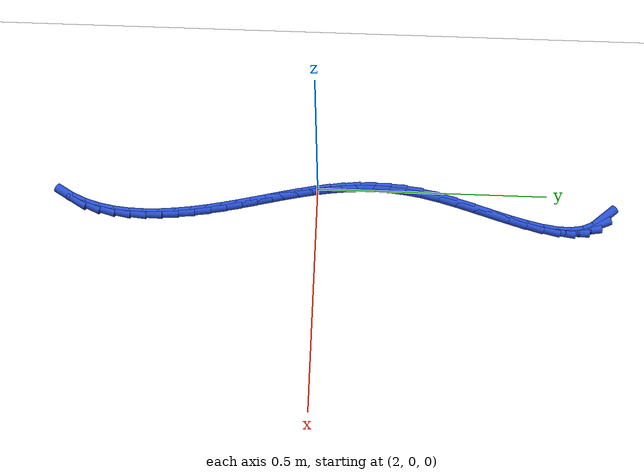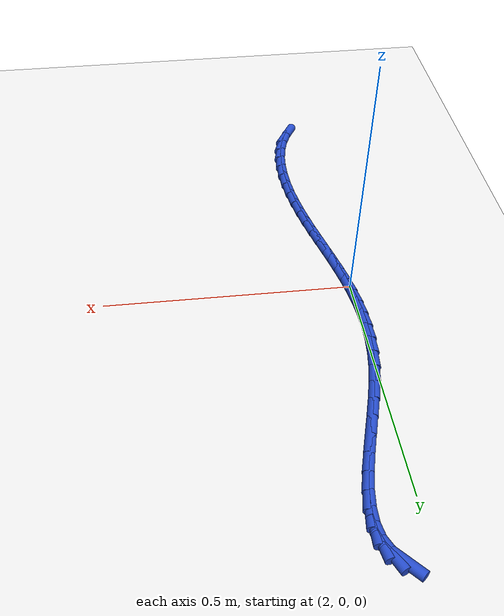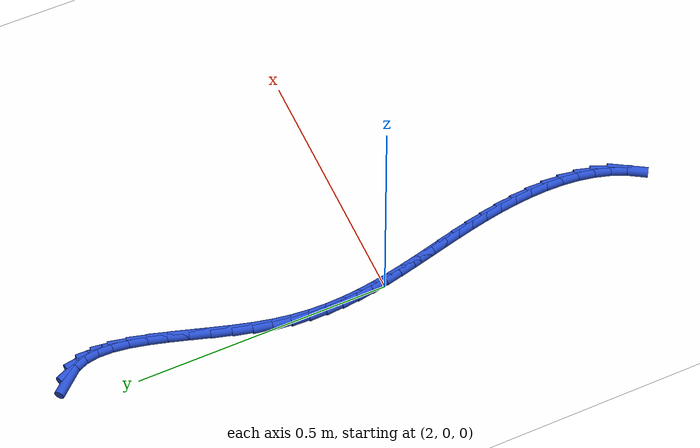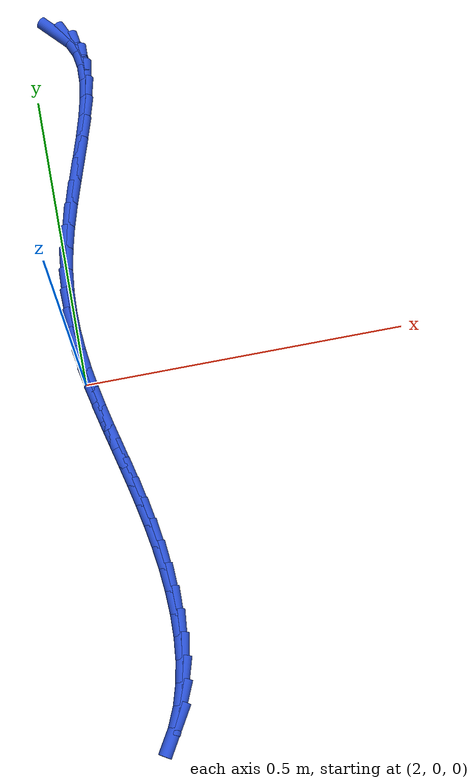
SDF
<sdf version="1.6">
 <world name="default">
  <model name="ground_plane">
   <static>1</static>
   <link name="link">
    <collision name="collision">
     <geometry><plane><normal>0 0 1</normal><size>100 100</size></plane></geometry>
     <surface><friction><ode><mu>100</mu><mu2>50</mu2></ode></friction></surface>
    </collision>
    <visual name="visual">
     <cast_shadows>0</cast_shadows>
     <geometry><plane><normal>0 0 1</normal><size>100 100</size></plane></geometry>
     <material>
      <script><uri>file://media/materials/scripts/gazebo.material</uri><name>Gazebo/WhiteGlow</name></script>
     </material>
    </visual>
   </link>
  </model>
  <model name="line">
   <link name="link_87">
    <pose>2.053789627583341 0.6159602797670356 0.01 0 1.57 -0.847214775837806</pose>
    <collision name="collision">
     <geometry><cylinder><radius>0.01</radius><length>0.08</length></cylinder></geometry>
    </collision>
    <visual name="visual">
     <material>
      <script><name>Gazebo/Blue</name><uri>file://media/materials/scripts/gazebo.material</uri></script>
     </material>
     <geometry><cylinder><radius>0.01</radius><length>0.08</length></cylinder></geometry>
    </visual>
   </link>
   <link name="link_88">
    <pose>2.0699461213613346 0.5976717979386476 0.01 0 1.57 -1.164466356212508</pose>
    <collision name="collision">
     <geometry><cylinder><radius>0.01</radius><length>0.08</length></cylinder></geometry>
    </collision>
    <visual name="visual">
     <material>
      <script><name>Gazebo/Blue</name><uri>file://media/materials/scripts/gazebo.material</uri></script>
     </material>
     <geometry><cylinder><radius>0.01</radius><length>0.08</length></cylinder></geometry>
    </visual>
   </link>
   <link name="link_89">
    <pose>2.0796331212637758 0.5751582799578796 0.01 0 1.57 -1.4177579221196956</pose>
    <collision name="collision">
     <geometry><cylinder><radius>0.01</radius><length>0.08</length></cylinder></geometry>
    </collision>
    <visual name="visual">
     <material>
      <script><name>Gazebo/Blue</name><uri>file://media/materials/scripts/gazebo.material</uri></script>
     </material>
     <geometry><cylinder><radius>0.01</radius><length>0.08</length></cylinder></geometry>
    </visual>
   </link>
   <link name="link_90">
    <pose>2.083682391664221 0.5489059897656291 0.01 0 1.57 1.54560367884064</pose>
    <collision name="collision">
     <geometry><cylinder><radius>0.01</radius><length>0.08</length></cylinder></geometry>
    </collision>
    <visual name="visual">
     <material>
      <script><name>Gazebo/Blue</name><uri>file://media/materials/scripts/gazebo.material</uri></script>
     </material>
     <geometry><cylinder><radius>0.01</radius><length>0.08</length></cylinder></geometry>
    </visual>
   </link>
   <link name="link_91">
    <pose>2.0829391731778553 0.5194108271944898 0.01 0 1.57 1.4263334374678107</pose>
    <collision name="collision">
     <geometry><cylinder><radius>0.01</radius><length>0.08</length></cylinder></geometry>
    </collision>
    <visual name="visual">
     <material>
      <script><name>Gazebo/Blue</name><uri>file://media/materials/scripts/gazebo.material</uri></script>
     </material>
     <geometry><cylinder><radius>0.01</radius><length>0.08</length></cylinder></geometry>
    </visual>
   </link>
   <link name="link_92">
    <pose>2.0782487064198656 0.4871686920770563 0.01 0 1.57 1.3486127624126258</pose>
    <collision name="collision">
     <geometry><cylinder><radius>0.01</radius><length>0.08</length></cylinder></geometry>
    </collision>
    <visual name="visual">
     <material>
      <script><name>Gazebo/Blue</name><uri>file://media/materials/scripts/gazebo.material</uri></script>
     </material>
     <geometry><cylinder><radius>0.01</radius><length>0.08</length></cylinder></geometry>
    </visual>
   </link>
   <link name="link_93">
    <pose>2.070456232005439 0.45267548424592347 0.01 0 1.57 1.3003554515478324</pose>
    <collision name="collision">
     <geometry><cylinder><radius>0.01</radius><length>0.08</length></cylinder></geometry>
    </collision>
    <visual name="visual">
     <material>
      <script><name>Gazebo/Blue</name><uri>file://media/materials/scripts/gazebo.material</uri></script>
     </material>
     <geometry><cylinder><radius>0.01</radius><length>0.08</length></cylinder></geometry>
    </visual>
   </link>
   <link name="link_94">
    <pose>2.060406990549763 0.41642710353368567 0.01 0 1.57 1.274248179263128</pose>
    <collision name="collision">
     <geometry><cylinder><radius>0.01</radius><length>0.08</length></cylinder></geometry>
    </collision>
    <visual name="visual">
     <material>
      <script><name>Gazebo/Blue</name><uri>file://media/materials/scripts/gazebo.material</uri></script>
     </material>
     <geometry><cylinder><radius>0.01</radius><length>0.08</length></cylinder></geometry>
    </visual>
   </link>
   <link name="link_95">
    <pose>2.048946222668023 0.37891944977293673 0.01 0 1.57 1.2663088284866133</pose>
    <collision name="collision">
     <geometry><cylinder><radius>0.01</radius><length>0.08</length></cylinder></geometry>
    </collision>
    <visual name="visual">
     <material>
      <script><name>Gazebo/Blue</name><uri>file://media/materials/scripts/gazebo.material</uri></script>
     </material>
     <geometry><cylinder><radius>0.01</radius><length>0.08</length></cylinder></geometry>
    </visual>
   </link>
   <link name="link_96">
    <pose>2.036919168975406 0.3406484227962721 0.01 0 1.57 1.274904568867692</pose>
    <collision name="collision">
     <geometry><cylinder><radius>0.01</radius><length>0.08</length></cylinder></geometry>
    </collision>
    <visual name="visual">
     <material>
      <script><name>Gazebo/Blue</name><uri>file://media/materials/scripts/gazebo.material</uri></script>
     </material>
     <geometry><cylinder><radius>0.01</radius><length>0.08</length></cylinder></geometry>
    </visual>
   </link>
   <link name="link_97">
    <pose>2.025171070087099 0.3021099224362859 0.01 0 1.57 1.3002804805358965</pose>
    <collision name="collision">
     <geometry><cylinder><radius>0.01</radius><length>0.08</length></cylinder></geometry>
    </collision>
    <visual name="visual">
     <material>
      <script><name>Gazebo/Blue</name><uri>file://media/materials/scripts/gazebo.material</uri></script>
     </material>
     <geometry><cylinder><radius>0.01</radius><length>0.08</length></cylinder></geometry>
    </visual>
   </link>
   <link name="link_98">
    <pose>2.014547166618289 0.263799848525572 0.01 0 1.57 1.3444816933102188</pose>
    <collision name="collision">
     <geometry><cylinder><radius>0.01</radius><length>0.08</length></cylinder></geometry>
    </collision>
    <visual name="visual">
     <material>
      <script><name>Gazebo/Blue</name><uri>file://media/materials/scripts/gazebo.material</uri></script>
     </material>
     <geometry><cylinder><radius>0.01</radius><length>0.08</length></cylinder></geometry>
    </visual>
   </link>
   <link name="link_99">
    <pose>2.005892699184162 0.2262141008967259 0.01 0 1.57 1.4073779231363153</pose>
    <collision name="collision">
     <geometry><cylinder><radius>0.01</radius><length>0.08</length></cylinder></geometry>
    </collision>
    <visual name="visual">
     <material>
      <script><name>Gazebo/Blue</name><uri>file://media/materials/scripts/gazebo.material</uri></script>
     </material>
     <geometry><cylinder><radius>0.01</radius><length>0.08</length></cylinder></geometry>
    </visual>
   </link>
   <link name="link_100">
    <pose>1.9998800889988877 0.18974947320539307 0.01 0 1.57 1.4738942714069039</pose>
    <collision name="collision">
     <geometry><cylinder><radius>0.01</radius><length>0.08</length></cylinder></geometry>
    </collision>
    <visual name="visual">
     <material>
      <script><name>Gazebo/Blue</name><uri>file://media/materials/scripts/gazebo.material</uri></script>
     </material>
     <geometry><cylinder><radius>0.01</radius><length>0.08</length></cylinder></geometry>
    </visual>
   </link>
   <link name="link_101">
    <pose>1.9964417920037365 0.15437841364114288 0.01 0 1.57 1.5379904818100658</pose>
    <collision name="collision">
     <geometry><cylinder><radius>0.01</radius><length>0.08</length></cylinder></geometry>
    </collision>
    <visual name="visual">
     <material>
      <script><name>Gazebo/Blue</name><uri>file://media/materials/scripts/gazebo.material</uri></script>
     </material>
     <geometry><cylinder><radius>0.01</radius><length>0.08</length></cylinder></geometry>
    </visual>
   </link>
   <link name="link_102">
    <pose>1.9953122556874872 0.1199598191335935 0.01 0 1.57 -1.5436163245662071</pose>
    <collision name="collision">
     <geometry><cylinder><radius>0.01</radius><length>0.08</length></cylinder></geometry>
    </collision>
    <visual name="visual">
     <material>
      <script><name>Gazebo/Blue</name><uri>file://media/materials/scripts/gazebo.material</uri></script>
     </material>
     <geometry><cylinder><radius>0.01</radius><length>0.08</length></cylinder></geometry>
    </visual>
   </link>
   <link name="link_103">
    <pose>1.9962259253789918 0.08635258537371454 0.01 0 1.57 -1.4892662232325489</pose>
    <collision name="collision">
     <geometry><cylinder><radius>0.01</radius><length>0.08</length></cylinder></geometry>
    </collision>
    <visual name="visual">
     <material>
      <script><name>Gazebo/Blue</name><uri>file://media/materials/scripts/gazebo.material</uri></script>
     </material>
     <geometry><cylinder><radius>0.01</radius><length>0.08</length></cylinder></geometry>
    </visual>
   </link>
   <link name="link_104">
    <pose>1.9989172464071008 0.05341560805247578 0.01 0 1.57 -1.4418126228187453</pose>
    <collision name="collision">
     <geometry><cylinder><radius>0.01</radius><length>0.08</length></cylinder></geometry>
    </collision>
    <visual name="visual">
     <material>
      <script><name>Gazebo/Blue</name><uri>file://media/materials/scripts/gazebo.material</uri></script>
     </material>
     <geometry><cylinder><radius>0.01</radius><length>0.08</length></cylinder></geometry>
    </visual>
   </link>
   <link name="link_105">
    <pose>2.0031206641006656 0.021007782860847108 0.01 0 1.57 -1.4022059183108653</pose>
    <collision name="collision">
     <geometry><cylinder><radius>0.01</radius><length>0.08</length></cylinder></geometry>
    </collision>
    <visual name="visual">
     <material>
      <script><name>Gazebo/Blue</name><uri>file://media/materials/scripts/gazebo.material</uri></script>
     </material>
     <geometry><cylinder><radius>0.01</radius><length>0.08</length></cylinder></geometry>
    </visual>
   </link>
   <link name="link_106">
    <pose>2.008570623788536 -0.01101199451020225 0.01 0 1.57 -1.371090350735252</pose>
    <collision name="collision">
     <geometry><cylinder><radius>0.01</radius><length>0.08</length></cylinder></geometry>
    </collision>
    <visual name="visual">
     <material>
      <script><name>Gazebo/Blue</name><uri>file://media/materials/scripts/gazebo.material</uri></script>
     </material>
     <geometry><cylinder><radius>0.01</radius><length>0.08</length></cylinder></geometry>
    </visual>
   </link>
   <link name="link_107">
    <pose>2.015001570799565 -0.04278482836970099 0.01 0 1.57 -1.3488415867138641</pose>
    <collision name="collision">
     <geometry><cylinder><radius>0.01</radius><length>0.08</length></cylinder></geometry>
    </collision>
    <visual name="visual">
     <material>
      <script><name>Gazebo/Blue</name><uri>file://media/materials/scripts/gazebo.material</uri></script>
     </material>
     <geometry><cylinder><radius>0.01</radius><length>0.08</length></cylinder></geometry>
    </visual>
   </link>
   <link name="link_108">
    <pose>2.022147950462602 -0.07445182302667994 0.01 0 1.57 -1.3356177760901529</pose>
    <collision name="collision">
     <geometry><cylinder><radius>0.01</radius><length>0.08</length></cylinder></geometry>
    </collision>
    <visual name="visual">
     <material>
      <script><name>Gazebo/Blue</name><uri>file://media/materials/scripts/gazebo.material</uri></script>
     </material>
     <geometry><cylinder><radius>0.01</radius><length>0.08</length></cylinder></geometry>
    </visual>
   </link>
   <link name="link_109">
    <pose>2.0297442081064987 -0.10615408279016922 0.01 0 1.57 -1.3314076480795707</pose>
    <collision name="collision">
     <geometry><cylinder><radius>0.01</radius><length>0.08</length></cylinder></geometry>
    </collision>
    <visual name="visual">
     <material>
      <script><name>Gazebo/Blue</name><uri>file://media/materials/scripts/gazebo.material</uri></script>
     </material>
     <geometry><cylinder><radius>0.01</radius><length>0.08</length></cylinder></geometry>
    </visual>
   </link>
   <link name="link_110">
    <pose>2.0375247890601047 -0.13803271196919892 0.01 0 1.57 -1.3360654437675594</pose>
    <collision name="collision">
     <geometry><cylinder><radius>0.01</radius><length>0.08</length></cylinder></geometry>
    </collision>
    <visual name="visual">
     <material>
      <script><name>Gazebo/Blue</name><uri>file://media/materials/scripts/gazebo.material</uri></script>
     </material>
     <geometry><cylinder><radius>0.01</radius><length>0.08</length></cylinder></geometry>
    </visual>
   </link>
   <link name="link_111">
    <pose>2.045224138652273 -0.17022881487279917 0.01 0 1.57 -1.3493285617771844</pose>
    <collision name="collision">
     <geometry><cylinder><radius>0.01</radius><length>0.08</length></cylinder></geometry>
    </collision>
    <visual name="visual">
     <material>
      <script><name>Gazebo/Blue</name><uri>file://media/materials/scripts/gazebo.material</uri></script>
     </material>
     <geometry><cylinder><radius>0.01</radius><length>0.08</length></cylinder></geometry>
    </visual>
   </link>
   <link name="link_112">
    <pose>2.0525767022118533 -0.20288349581000092 0.01 0 1.57 -1.3708185766629097</pose>
    <collision name="collision">
     <geometry><cylinder><radius>0.01</radius><length>0.08</length></cylinder></geometry>
    </collision>
    <visual name="visual">
     <material>
      <script><name>Gazebo/Blue</name><uri>file://media/materials/scripts/gazebo.material</uri></script>
     </material>
     <geometry><cylinder><radius>0.01</radius><length>0.08</length></cylinder></geometry>
    </visual>
   </link>
   <link name="link_113">
    <pose>2.059316925067697 -0.23613785908983273 0.01 0 1.57 -1.3999984685130713</pose>
    <collision name="collision">
     <geometry><cylinder><radius>0.01</radius><length>0.08</length></cylinder></geometry>
    </collision>
    <visual name="visual">
     <material>
      <script><name>Gazebo/Blue</name><uri>file://media/materials/scripts/gazebo.material</uri></script>
     </material>
     <geometry><cylinder><radius>0.01</radius><length>0.08</length></cylinder></geometry>
    </visual>
   </link>
   <link name="link_114">
    <pose>2.0651760905341843 -0.270108308524428 0.01 0 1.57 -1.4362408463573992</pose>
    <collision name="collision">
     <geometry><cylinder><radius>0.01</radius><length>0.08</length></cylinder></geometry>
    </collision>
    <visual name="visual">
     <material>
      <script><name>Gazebo/Blue</name><uri>file://media/materials/scripts/gazebo.material</uri></script>
     </material>
     <geometry><cylinder><radius>0.01</radius><length>0.08</length></cylinder></geometry>
    </visual>
   </link>
   <link name="link_115">
    <pose>2.0698506438786035 -0.3046391058840592 0.01 0 1.57 -1.48001718023578</pose>
    <collision name="collision">
     <geometry><cylinder><radius>0.01</radius><length>0.08</length></cylinder></geometry>
    </collision>
    <visual name="visual">
     <material>
      <script><name>Gazebo/Blue</name><uri>file://media/materials/scripts/gazebo.material</uri></script>
     </material>
     <geometry><cylinder><radius>0.01</radius><length>0.08</length></cylinder></geometry>
    </visual>
   </link>
   <link name="link_116">
    <pose>2.073015433700677 -0.3394058076957874 0.01 0 1.57 -1.5324725540048019</pose>
    <collision name="collision">
     <geometry><cylinder><radius>0.01</radius><length>0.08</length></cylinder></geometry>
    </collision>
    <visual name="visual">
     <material>
      <script><name>Gazebo/Blue</name><uri>file://media/materials/scripts/gazebo.material</uri></script>
     </material>
     <geometry><cylinder><radius>0.01</radius><length>0.08</length></cylinder></geometry>
    </visual>
   </link>
   <link name="link_117">
    <pose>2.074344986183395 -0.3740814518854568 0.01 0 1.57 1.5465390801897019</pose>
    <collision name="collision">
     <geometry><cylinder><radius>0.01</radius><length>0.08</length></cylinder></geometry>
    </collision>
    <visual name="visual">
     <material>
      <script><name>Gazebo/Blue</name><uri>file://media/materials/scripts/gazebo.material</uri></script>
     </material>
     <geometry><cylinder><radius>0.01</radius><length>0.08</length></cylinder></geometry>
    </visual>
   </link>
   <link name="link_118">
    <pose>2.07351382750975 -0.4083390763789114 0.01 0 1.57 1.4721299268742185</pose>
    <collision name="collision">
     <geometry><cylinder><radius>0.01</radius><length>0.08</length></cylinder></geometry>
    </collision>
    <visual name="visual">
     <material>
      <script><name>Gazebo/Blue</name><uri>file://media/materials/scripts/gazebo.material</uri></script>
     </material>
     <geometry><cylinder><radius>0.01</radius><length>0.08</length></cylinder></geometry>
    </visual>
   </link>
   <link name="link_119">
    <pose>2.0701964838627323 -0.44185171910199644 0.01 0 1.57 1.3840678610374753</pose>
    <collision name="collision">
     <geometry><cylinder><radius>0.01</radius><length>0.08</length></cylinder></geometry>
    </collision>
    <visual name="visual">
     <material>
      <script><name>Gazebo/Blue</name><uri>file://media/materials/scripts/gazebo.material</uri></script>
     </material>
     <geometry><cylinder><radius>0.01</radius><length>0.08</length></cylinder></geometry>
    </visual>
   </link>
   <link name="link_120">
    <pose>2.064067481425333 -0.47429241798055394 0.01 0 1.57 1.28071151850726</pose>
    <collision name="collision">
     <geometry><cylinder><radius>0.01</radius><length>0.08</length></cylinder></geometry>
    </collision>
    <visual name="visual">
     <material>
      <script><name>Gazebo/Blue</name><uri>file://media/materials/scripts/gazebo.material</uri></script>
     </material>
     <geometry><cylinder><radius>0.01</radius><length>0.08</length></cylinder></geometry>
    </visual>
   </link>
   <link name="link_121">
    <pose>2.0548013463805423 -0.505334210940429 0.01 0 1.57 1.161169217758875</pose>
    <collision name="collision">
     <geometry><cylinder><radius>0.01</radius><length>0.08</length></cylinder></geometry>
    </collision>
    <visual name="visual">
     <material>
      <script><name>Gazebo/Blue</name><uri>file://media/materials/scripts/gazebo.material</uri></script>
     </material>
     <geometry><cylinder><radius>0.01</radius><length>0.08</length></cylinder></geometry>
    </visual>
   </link>
   <link name="link_122">
    <pose>2.0420726983760566 -0.5346501976191909 0.01 0 1.57 1.0325083423174015</pose>
    <collision name="collision">
     <geometry><cylinder><radius>0.01</radius><length>0.08</length></cylinder></geometry>
    </collision>
    <visual name="visual">
     <material>
      <script><name>Gazebo/Blue</name><uri>file://media/materials/scripts/gazebo.material</uri></script>
     </material>
     <geometry><cylinder><radius>0.01</radius><length>0.08</length></cylinder></geometry>
    </visual>
   </link>
  </model>
 </world>
</sdf>
